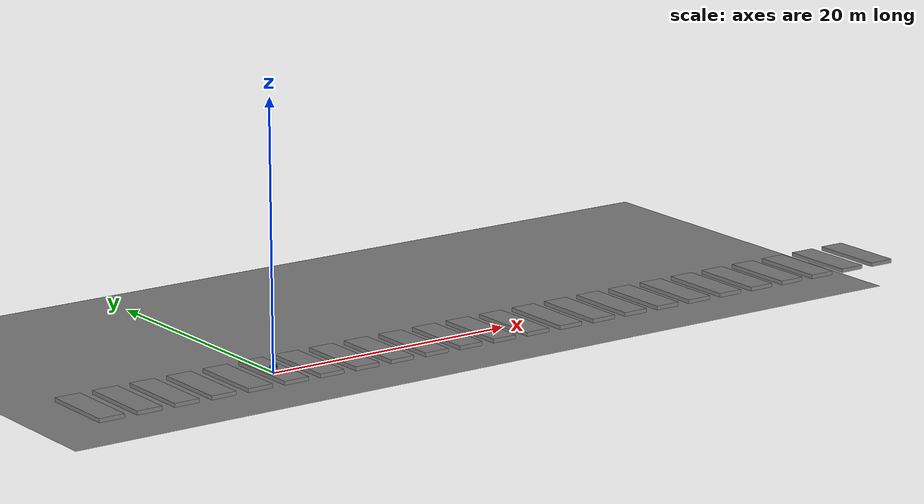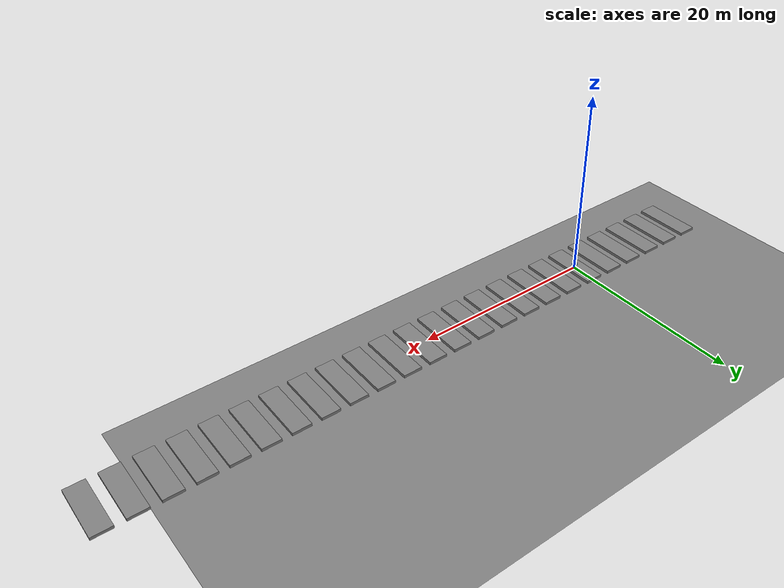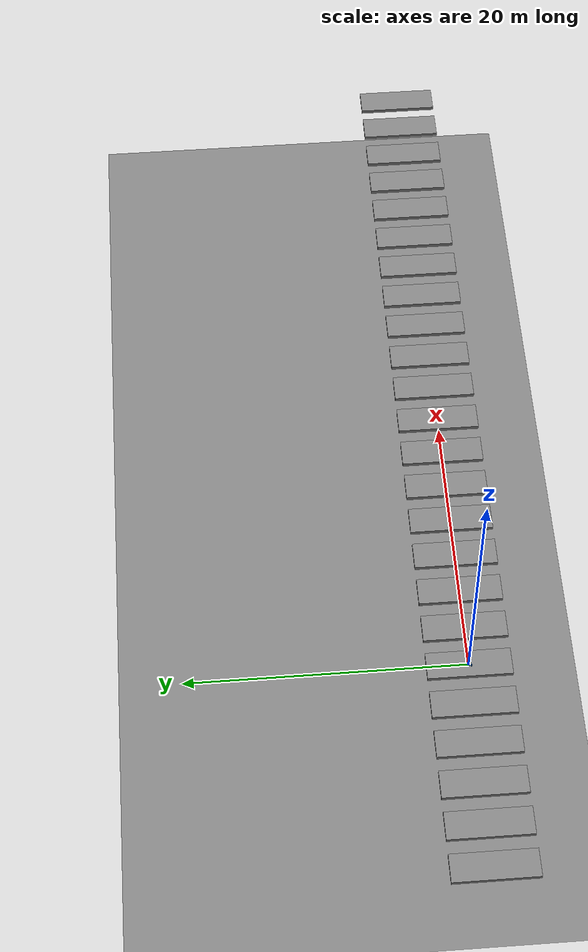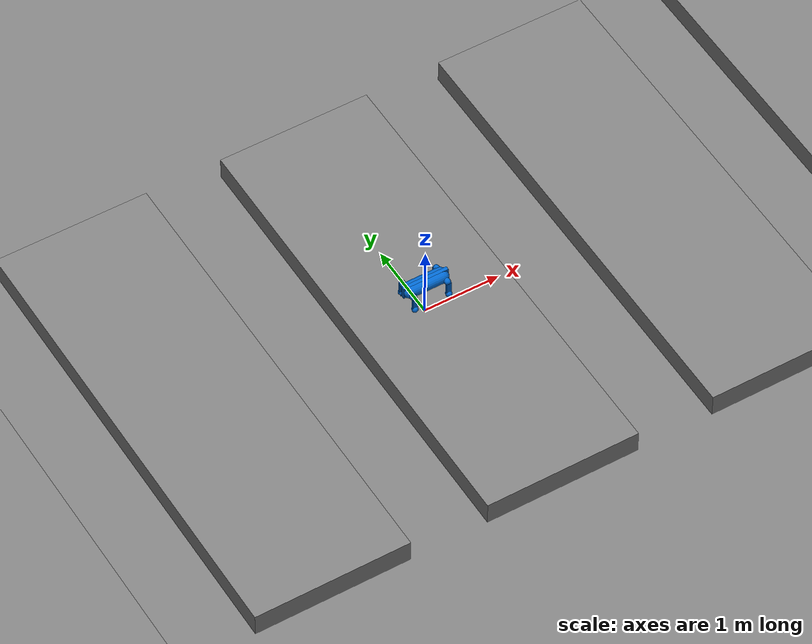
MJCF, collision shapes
<mujoco model="S10">
  <default>
      <default class="robot">
          <default class="motor">
              <joint />
              <motor />
          </default>
          <default class="visual">
              <geom material="default_material" contype="0" conaffinity="0" group="2" />
          </default>
          <default class="collision">
              <geom material="collision_material" condim="3" contype="1" conaffinity="1" solref="0.005 1" friction="1 0.01 0.001" density="0" group="1" />

          </default>
      </default>
  </default>

  <compiler angle="radian" meshdir="../meshes/" />
  <compiler autolimits="true" />

  <asset>
    <material name="default_material" rgba="0.7 0.7 0.7 1" />
    <material name="collision_material" rgba="0.0 0.4 0.8 0.2" />
    <mesh name="base_link" file="base_link.STL" />
    <mesh name="fl_hipx" file="fl_hipx.STL" />
    <mesh name="fl_hipy" file="fl_hipy.STL" />
    <mesh name="fl_knee" file="fl_knee.STL" />
    <mesh name="fl_wheel" file="fl_wheel.STL" />
    <mesh name="fr_hipx" file="fr_hipx.STL" />
    <mesh name="fr_hipy" file="fr_hipy.STL" />
    <mesh name="fr_knee" file="fr_knee.STL" />
    <mesh name="fr_wheel" file="fr_wheel.STL" />
    <mesh name="hl_hipx" file="hl_hipx.STL" />
    <mesh name="hl_hipy" file="hl_hipy.STL" />
    <mesh name="hl_knee" file="hl_knee.STL" />
    <mesh name="hl_wheel" file="hl_wheel.STL" />
    <mesh name="hr_hipx" file="hr_hipx.STL" />
    <mesh name="hr_hipy" file="hr_hipy.STL" />
    <mesh name="hr_knee" file="hr_knee.STL" />
    <mesh name="hr_wheel" file="hr_wheel.STL" />
    <texture name="texplane" type="2d" builtin="checker" rgb1=".2 .3 .4" rgb2=".1 0.15 0.2" width="512" height="512" />

    <material name="MatPlane" reflectance="0.3" texture="texplane" texrepeat="1 1" texuniform="true" />
  </asset>

  <worldbody>

    <light directional="true" pos="-0.5 0.5 3" dir="0 0 -1" />

    <body name="base_link" pos="0 0.0 0.5" quat="1 0 0 0" childclass="robot">
      <freejoint name="floating_base" />
      <inertial pos="-0.000512 0.057317 0.001182" quat="1 0 0 0" mass="8.023087" diaginertia="0.115559 0.171329 0.262028" />
        <site name="imu_site" pos="0.0075 -0.0373 0.0556" size="0.005" rgba="1 0 0 1" />
        <site name="base_site" pos="0 0 0" quat="1 0 0 0" />
      <geom type="mesh" class="visual" mesh="base_link" />
      <geom size="0.08 0.22" pos="0 0.024 0" quat="0.707107 0 0.707107 0" type="capsule" class="collision" />
      <geom size="0.08 0.22" pos="0 -0.024 0" quat="0.707107 0 0.707107 0" type="capsule" class="collision" />
      <geom size="0.08 0.024 0.3" quat="0.707107 0 0.707107 0" type="box" class="collision" />
      <body name="fl_hipx" pos="0.2277 0.0574 0">
        <inertial pos="-0.005034 0.023524 4.6e-05" quat="0.25609 0.665262 -0.228203 0.663151" mass="0.627405" diaginertia="0.000415056 0.000391723 0.000223221" />
        <joint name="fl_hipx_joint" pos="0 0 0" axis="-1 0 0" range="-0.6109 0.6109" actuatorfrcrange="-50 50" />
        <geom type="mesh" class="visual" mesh="fl_hipx" />
        <geom size="0.04 0.01" pos="0 0.054 0" quat="0.707107 0.707107 0 0" type="capsule" class="collision" />
        <body name="fl_hipy" pos="0 0.0779 0">
          <inertial pos="7.4e-05 0.018439 -0.129675" quat="0.701304 -0.0510428 0.0516391 0.709155" mass="0.885874" diaginertia="0.00454086 0.00445199 0.00030515" />
          <joint name="fl_hipy_joint" pos="0 0 0" axis="0 -1 0" range="-2.5307 2.5307" actuatorfrcrange="-50 50" />
          <geom type="mesh" class="visual" mesh="fl_hipy" />
          <geom size="0.032 0.012 0.09" pos="0 0.012 -0.09" type="box" class="collision" />
          <geom size="0.04" pos="0 0.018 -0.18" quat="0.707107 0.707107 0 0" type="sphere" class="collision" />
          <body name="fl_knee" pos="0 0 -0.18">
            <inertial pos="-3.2e-05 0.013504 -0.156308" quat="0.703786 -0.068447 0.068447 0.703786" mass="0.640283" diaginertia="0.0022296 0.002221 0.000193398" />
            <joint name="fl_knee_joint" pos="0 0 0" axis="0 -1 0" range="-2.7227 2.7227" actuatorfrcrange="-50 50" />
            <geom type="mesh" class="visual" mesh="fl_knee" />
            <geom size="0.029 0.01 0.09" pos="0 -0.012 -0.09" type="box" class="collision" />
            <geom size="0.04" pos="0 0.002 -0.18" quat="0.707107 0.707107 0 0" type="sphere" class="collision" />
            <body name="fl_wheel" pos="0 0.045891 -0.18">
              <inertial pos="-8e-06 0.001694 -5e-06" quat="0.707107 0 0 0.707107" mass="0.587952" diaginertia="0.002003 0.001059 0.001059" />
              <joint name="fl_wheel_joint" pos="0 0 0" axis="0 -1 0" actuatorfrcrange="-14 14" />
              <geom type="mesh" class="visual" mesh="fl_wheel" />
              <geom size="0.081" quat="0.707107 0.707107 0 0" type="sphere" class="collision" />
            </body>
          </body>
        </body>
      </body>
      <body name="fr_hipx" pos="0.2277 -0.0574 0">
        <inertial pos="-0.004831 -0.02349 0.000169" quat="-0.278522 0.675499 0.205833 0.650968" mass="0.626546" diaginertia="0.000415238 0.000395047 0.000218715" />
        <joint name="fr_hipx_joint" pos="0 0 0" axis="-1 0 0" range="-0.6109 0.6109" actuatorfrcrange="-50 50" />
        <geom type="mesh" class="visual" mesh="fr_hipx" />
        <geom size="0.04 0.01" pos="0 -0.054 0" quat="0.707107 0.707107 0 0" type="capsule" class="collision" />
        <body name="fr_hipy" pos="0 -0.0779 0">
          <inertial pos="-7.4e-05 -0.018439 -0.129675" quat="0.701304 0.0510428 -0.0516391 0.709155" mass="0.885874" diaginertia="0.00454086 0.00445199 0.00030515" />
          <joint name="fr_hipy_joint" pos="0 0 0" axis="0 -1 0" range="-2.5307 2.5307" actuatorfrcrange="-50 50" />
          <geom type="mesh" class="visual" mesh="fr_hipy" />
          <geom size="0.032 0.012 0.09" pos="0 -0.012 -0.09" type="box" class="collision" />
          <geom size="0.04" pos="0 -0.018 -0.18" quat="0.707107 0.707107 0 0" type="sphere" class="collision" />
          <body name="fr_knee" pos="0 0 -0.18">
            <inertial pos="3.2e-05 -0.013504 -0.156308" quat="0.703786 0.068447 -0.068447 0.703786" mass="0.640283" diaginertia="0.0022296 0.002221 0.000193398" />
            <joint name="fr_knee_joint" pos="0 0 0" axis="0 -1 0" range="-2.7227 2.7227" actuatorfrcrange="-50 50" />
            <geom type="mesh" class="visual" mesh="fr_knee" />
            <geom size="0.029 0.01 0.09" pos="0 0.012 -0.09" type="box" class="collision" />
            <geom size="0.04" pos="0 -0.002 -0.18" quat="0.707107 0.707107 0 0" type="sphere" class="collision" />
            <body name="fr_wheel" pos="0 -0.045891 -0.18">
              <inertial pos="8e-06 -0.001694 5e-06" quat="0.707107 0 0 0.707107" mass="0.587952" diaginertia="0.002003 0.001059 0.001059" />
              <joint name="fr_wheel_joint" pos="0 0 0" axis="0 -1 0" actuatorfrcrange="-14 14" />
              <geom type="mesh" class="visual" mesh="fr_wheel" />
              <geom size="0.081" quat="0.707107 0.707107 0 0" type="sphere" class="collision" />
            </body>
          </body>
        </body>
      </body>
      <body name="hl_hipx" pos="-0.2277 0.0574 0">
        <inertial pos="0.004831 0.02349 0.000169" quat="-0.205833 0.650968 0.278522 0.675499" mass="0.626546" diaginertia="0.000415238 0.000395047 0.000218715" />
        <joint name="hl_hipx_joint" pos="0 0 0" axis="-1 0 0" range="-0.6109 0.6109" actuatorfrcrange="-50 50" />
        <geom type="mesh" class="visual" mesh="hl_hipx" />
        <geom size="0.04 0.01" pos="0 0.054 0" quat="0.707107 0.707107 0 0" type="capsule" class="collision" />
        <body name="hl_hipy" pos="0 0.0779 0">
          <inertial pos="7.4e-05 0.018439 -0.129675" quat="0.701304 -0.0510428 0.0516391 0.709155" mass="0.885874" diaginertia="0.00454086 0.00445199 0.00030515" />
          <joint name="hl_hipy_joint" pos="0 0 0" axis="0 -1 0" range="-2.5307 2.5307" actuatorfrcrange="-50 50" />
          <geom type="mesh" class="visual" mesh="hl_hipy" />
          <geom size="0.032 0.012 0.09" pos="0 0.012 -0.09" type="box" class="collision" />
          <geom size="0.04" pos="0 0.018 -0.18" quat="0.707107 0.707107 0 0" type="sphere" class="collision" />
          <body name="hl_knee" pos="0 0 -0.18">
            <inertial pos="-3.2e-05 0.013504 -0.156308" quat="0.703786 -0.068447 0.068447 0.703786" mass="0.640283" diaginertia="0.0022296 0.002221 0.000193398" />
            <joint name="hl_knee_joint" pos="0 0 0" axis="0 -1 0" range="-2.7227 2.7227" actuatorfrcrange="-50 50" />
            <geom type="mesh" class="visual" mesh="hl_knee" />
            <geom size="0.029 0.01 0.09" pos="0 -0.012 -0.09" type="box" class="collision" />
            <geom size="0.04" pos="0 0.002 -0.18" quat="0.707107 0.707107 0 0" type="sphere" class="collision" />
            <body name="hl_wheel" pos="0 0.054891 -0.18">
              <inertial pos="-8e-06 0.001694 -5e-06" quat="0.707107 0 0 0.707107" mass="0.587952" diaginertia="0.002003 0.001059 0.001059" />
              <joint name="hl_wheel_joint" pos="0 0 0" axis="0 -1 0" actuatorfrcrange="-14 14" />
              <geom type="mesh" class="visual" mesh="hl_wheel" />
              <geom size="0.081" quat="0.707107 0.707107 0 0" type="sphere" class="collision" />
            </body>
          </body>
        </body>
      </body>
      <body name="hr_hipx" pos="-0.2277 -0.0574 0">
        <inertial pos="0.005034 -0.023524 4.6e-05" quat="0.228203 0.663151 -0.25609 0.665262" mass="0.627405" diaginertia="0.000415056 0.000391723 0.000223221" />
        <joint name="hr_hipx_joint" pos="0 0 0" axis="-1 0 0" range="-0.6109 0.6109" actuatorfrcrange="-50 50" />
        <geom type="mesh" class="visual" mesh="hr_hipx" />
        <geom size="0.04 0.01" pos="0 -0.054 0" quat="0.707107 0.707107 0 0" type="capsule" class="collision" />
        <body name="hr_hipy" pos="0 -0.0779 0">
          <inertial pos="-7.4e-05 -0.018439 -0.129675" quat="0.701304 0.0510428 -0.0516391 0.709155" mass="0.885874" diaginertia="0.00454086 0.00445199 0.00030515" />
          <joint name="hr_hipy_joint" pos="0 0 0" axis="0 -1 0" range="-2.5307 2.5307" actuatorfrcrange="-50 50" />
          <geom type="mesh" class="visual" mesh="hr_hipy" />
          <geom size="0.032 0.012 0.09" pos="0 -0.012 -0.09" type="box" class="collision" />
          <geom size="0.04" pos="0 -0.018 -0.18" quat="0.707107 0.707107 0 0" type="sphere" class="collision" />
          <body name="hr_knee" pos="0 0 -0.18">
            <inertial pos="3.2e-05 -0.013504 -0.156308" quat="0.703786 0.068447 -0.068447 0.703786" mass="0.640283" diaginertia="0.0022296 0.002221 0.000193398" />
            <joint name="hr_knee_joint" pos="0 0 0" axis="0 -1 0" range="-2.7227 2.7227" actuatorfrcrange="-50 50" />
            <geom type="mesh" class="visual" mesh="hr_knee" />
            <geom size="0.029 0.01 0.09" pos="0 0.012 -0.09" type="box" class="collision" />
            <geom size="0.04" pos="0 -0.002 -0.18" quat="0.707107 0.707107 0 0" type="sphere" class="collision" />
            <body name="hr_wheel" pos="0 -0.045891 -0.18">
              <inertial pos="8e-06 -0.001694 5e-06" quat="0.707107 0 0 0.707107" mass="0.587952" diaginertia="0.002003 0.001059 0.001059" />
              <joint name="hr_wheel_joint" pos="0 0 0" axis="0 -1 0" actuatorfrcrange="-14 14" />
              <geom type="mesh" class="visual" mesh="hr_wheel" />
              <geom size="0.081" quat="0.707107 0.707107 0 0" type="sphere" class="collision" />
            </body>
          </body>
        </body>
      </body>
    </body>
  <geom name="ground" type="plane" size="50 50 0.1" pos="0 0 0" contype="1" conaffinity="1" condim="3" /><geom name="b0" type="box" size="1 3 0.15" pos="-15 0 0.15" contype="1" conaffinity="1" condim="3" /><geom name="b1" type="box" size="1 3 0.15" pos="-12 0 0.15" contype="1" conaffinity="1" condim="3" /><geom name="b2" type="box" size="1 3 0.15" pos="-9 0 0.15" contype="1" conaffinity="1" condim="3" /><geom name="b3" type="box" size="1 3 0.15" pos="-6 0 0.15" contype="1" conaffinity="1" condim="3" /><geom name="b4" type="box" size="1 3 0.15" pos="-3 0 0.15" contype="1" conaffinity="1" condim="3" /><geom name="b5" type="box" size="1 3 0.15" pos="0 0 0.15" contype="1" conaffinity="1" condim="3" /><geom name="b6" type="box" size="1 3 0.15" pos="3 0 0.15" contype="1" conaffinity="1" condim="3" /><geom name="b7" type="box" size="1 3 0.15" pos="6 0 0.15" contype="1" conaffinity="1" condim="3" /><geom name="b8" type="box" size="1 3 0.15" pos="9 0 0.15" contype="1" conaffinity="1" condim="3" /><geom name="b9" type="box" size="1 3 0.15" pos="12 0 0.15" contype="1" conaffinity="1" condim="3" /><geom name="b10" type="box" size="1 3 0.15" pos="15 0 0.15" contype="1" conaffinity="1" condim="3" /><geom name="b11" type="box" size="1 3 0.15" pos="18 0 0.15" contype="1" conaffinity="1" condim="3" /><geom name="b12" type="box" size="1 3 0.15" pos="21 0 0.15" contype="1" conaffinity="1" condim="3" /><geom name="b13" type="box" size="1 3 0.15" pos="24 0 0.15" contype="1" conaffinity="1" condim="3" /><geom name="b14" type="box" size="1 3 0.15" pos="27 0 0.15" contype="1" conaffinity="1" condim="3" /><geom name="b15" type="box" size="1 3 0.15" pos="30 0 0.15" contype="1" conaffinity="1" condim="3" /><geom name="b16" type="box" size="1 3 0.15" pos="33 0 0.15" contype="1" conaffinity="1" condim="3" /><geom name="b17" type="box" size="1 3 0.15" pos="36 0 0.15" contype="1" conaffinity="1" condim="3" /><geom name="b18" type="box" size="1 3 0.15" pos="39 0 0.15" contype="1" conaffinity="1" condim="3" /><geom name="b19" type="box" size="1 3 0.15" pos="42 0 0.15" contype="1" conaffinity="1" condim="3" /><geom name="b20" type="box" size="1 3 0.15" pos="45 0 0.15" contype="1" conaffinity="1" condim="3" /><geom name="b21" type="box" size="1 3 0.15" pos="48 0 0.15" contype="1" conaffinity="1" condim="3" /><geom name="b22" type="box" size="1 3 0.15" pos="51 0 0.15" contype="1" conaffinity="1" condim="3" /><geom name="b23" type="box" size="1 3 0.15" pos="54 0 0.15" contype="1" conaffinity="1" condim="3" /></worldbody>

    <actuator>
        <motor name="fl_hipx_joint" joint="fl_hipx_joint" ctrllimited="true" ctrlrange="-50.00 50.00" gear="1" />
        <motor name="fl_hipy_joint" joint="fl_hipy_joint" ctrllimited="true" ctrlrange="-50.00 50.00" gear="1" />
        <motor name="fl_knee_joint" joint="fl_knee_joint" ctrllimited="true" ctrlrange="-50.00 50.00" gear="1" />
        <motor name="fl_wheel_joint" joint="fl_wheel_joint" ctrllimited="true" ctrlrange="-14.00 14.00" gear="1" />
        <motor name="fr_hipx_joint" joint="fr_hipx_joint" ctrllimited="true" ctrlrange="-50.00 50.00" gear="1" />
        <motor name="fr_hipy_joint" joint="fr_hipy_joint" ctrllimited="true" ctrlrange="-50.00 50.00" gear="1" />
        <motor name="fr_knee_joint" joint="fr_knee_joint" ctrllimited="true" ctrlrange="-50.00 50.00" gear="1" />
        <motor name="fr_wheel_joint" joint="fr_wheel_joint" ctrllimited="true" ctrlrange="-14.00 14.00" gear="1" />
        <motor name="hl_hipx_joint" joint="hl_hipx_joint" ctrllimited="true" ctrlrange="-50.00 50.00" gear="1" />
        <motor name="hl_hipy_joint" joint="hl_hipy_joint" ctrllimited="true" ctrlrange="-50.00 50.00" gear="1" />
        <motor name="hl_knee_joint" joint="hl_knee_joint" ctrllimited="true" ctrlrange="-50.00 50.00" gear="1" />
        <motor name="hl_wheel_joint" joint="hl_wheel_joint" ctrllimited="true" ctrlrange="-14.00 14.00" gear="1" />
        <motor name="hr_hipx_joint" joint="hr_hipx_joint" ctrllimited="true" ctrlrange="-50.00 50.00" gear="1" />
        <motor name="hr_hipy_joint" joint="hr_hipy_joint" ctrllimited="true" ctrlrange="-50.00 50.00" gear="1" />
        <motor name="hr_knee_joint" joint="hr_knee_joint" ctrllimited="true" ctrlrange="-50.00 50.00" gear="1" />
        <motor name="hr_wheel_joint" joint="hr_wheel_joint" ctrllimited="true" ctrlrange="-14.00 14.00" gear="1" />
    </actuator>

    <contact>
        <exclude body1="base_link" body2="fl_hipx" />
        <exclude body1="fl_hipx" body2="fl_hipy" />
        <exclude body1="fl_hipy" body2="fl_knee" />
        <exclude body1="fl_knee" body2="fl_wheel" />

        <exclude body1="base_link" body2="fr_hipx" />
        <exclude body1="fr_hipx" body2="fr_hipy" />
        <exclude body1="fr_hipy" body2="fr_knee" />
        <exclude body1="fr_knee" body2="fr_wheel" />

        <exclude body1="base_link" body2="hl_hipx" />
        <exclude body1="hl_hipx" body2="hl_hipy" />
        <exclude body1="hl_hipy" body2="hl_knee" />
        <exclude body1="hl_knee" body2="hl_wheel" />

        <exclude body1="base_link" body2="hr_hipx" />
        <exclude body1="hr_hipx" body2="hr_hipy" />
        <exclude body1="hr_hipy" body2="hr_knee" />
        <exclude body1="hr_knee" body2="hr_wheel" />

    </contact>

    <sensor>

        <framequat name="base_quat" objtype="site" objname="base_site" />

        <accelerometer site="imu_site" />
        <gyro site="imu_site" />
    </sensor>
</mujoco>
